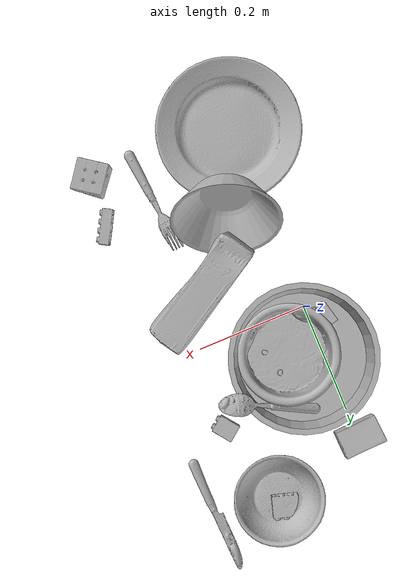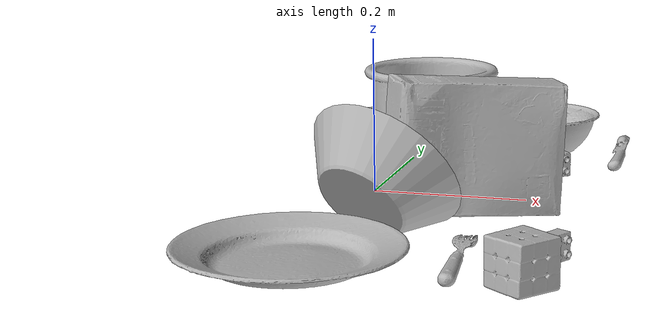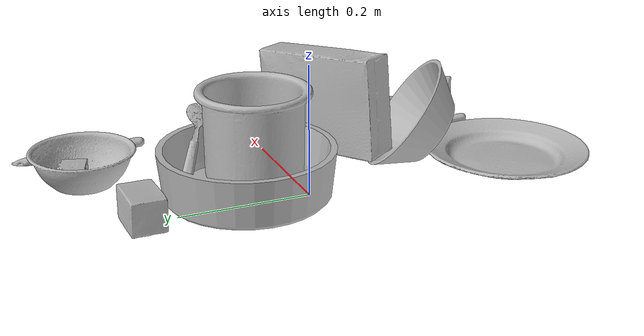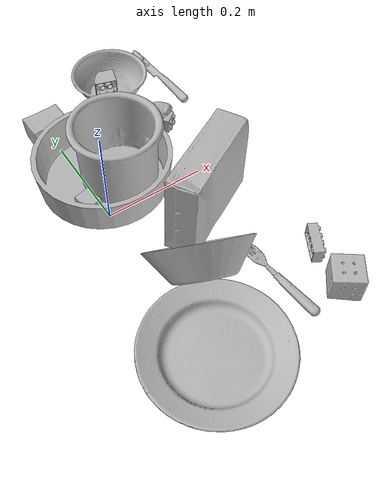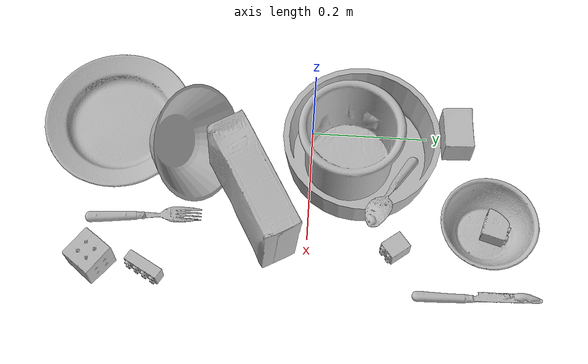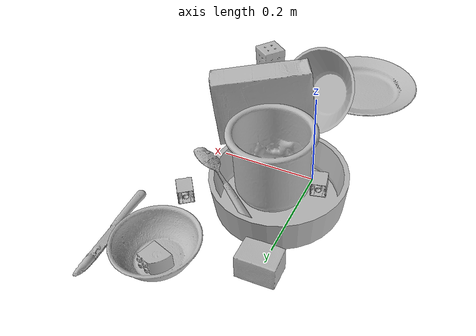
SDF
<sdf version="1.4">
  <world name="default">
    <light name="light1" type="point">
      <pose>0 0 1 0 0 0</pose>
      <diffuse>3 3 3 1</diffuse>
      <specular>3 3 3 1</specular>
    </light>
    <light name="light2" type="point">
      <pose>0 0.5 2 0 0 0</pose>
      <diffuse>1 1 1 1</diffuse>
      <specular>1 1 1 1</specular>
    </light>
    <light name="light3" type="point">
      <pose>0 0.5 2 0 0 0</pose>
      <diffuse>3 3 3 1</diffuse>
      <specular>3 3 3 1</specular>
    </light>
    <scene>
      <ambient>0.7 0.7 0.7</ambient>
    </scene>
    <model name="plate1">
      <link name="link_plate1">
        <collision name="default">
          <geometry>
            <mesh>
              <uri>model://plate/collision_meshes/collision.obj</uri>
              <scale>1.0 1.0 1.0</scale>
            </mesh>
          </geometry>
          <surface>
            <friction>
              <ode>
                <mu>0.5</mu>
                <mu2>0.5</mu2>
              </ode>
            </friction>
          <contact>
        <ode>
            <max_vel>0</max_vel>
            <min_depth>0.0001</min_depth>
            <kp>1e8</kp>
        </ode>
    </contact></surface>
        </collision>
        <visual name="default">
          <geometry>
            <mesh>
              <uri>model://plate/visual_meshes/visual.dae</uri>
              <scale>1.0 1.0 1.0</scale>
            </mesh>
          </geometry>
        </visual>
        <inertial>
          <mass>0.14927330613136292</mass>
          <pose>-0.0006044599576853216 0.00027825793949887156 -0.0010561984963715076 0.0022187657602494516 -0.0032254905015569333 0.45261542380491104</pose>
          <inertia>
            <ixx>0.0006983033</ixx>
            <iyy>0.0006916243</iyy>
            <izz>0.0013657772</izz>
            <ixy>0</ixy>
            <ixz>0</ixz>
            <iyz>0</iyz>
          </inertia>
        </inertial>
      </link>
      <pose>0.002247821306809783 -0.3411657214164734 0.013732998631894588 -3.3892048901661396e-08 2.9117569890897218e-08 1.7018580919705972</pose>
    </model>
    <model name="plate2">
      <link name="link_plate2">
        <collision name="default">
          <geometry>
            <mesh>
              <uri>model://pan_tefal/collision_meshes/collision.obj</uri>
              <scale>1.0 1.0 1.0</scale>
            </mesh>
          </geometry>
          <surface>
            <friction>
              <ode>
                <mu>0.5</mu>
                <mu2>0.5</mu2>
              </ode>
            </friction>
          <contact>
        <ode>
            <max_vel>0</max_vel>
            <min_depth>0.0001</min_depth>
            <kp>1e8</kp>
        </ode>
    </contact></surface>
        </collision>
        <visual name="default">
          <geometry>
            <mesh>
              <uri>model://pan_tefal/visual_meshes/visual.dae</uri>
              <scale>1.0 1.0 1.0</scale>
            </mesh>
          </geometry>
        </visual>
        <inertial>
          <mass>1.1722657680511475</mass>
          <pose>-0.00018002268916461617 3.2786720112198964e-05 -0.008514933288097382 0.0008190189984333748 -0.0003301390782503885 -0.3318520141268409</pose>
          <inertia>
            <ixx>0.008092094</ixx>
            <iyy>0.008144264</iyy>
            <izz>0.014895983</izz>
            <ixy>0</ixy>
            <ixz>0</ixz>
            <iyz>0</iyz>
          </inertia>
        </inertial>
      </link>
      <pose>0.03717725723981857 0.08269951492547989 0.03804996237158775 -8.32752676825464e-07 -6.860819170761176e-07 -0.4714575460271941</pose>
    </model>
    <model name="bowl1">
      <link name="link_bowl1">
        <collision name="default">
          <geometry>
            <mesh>
              <uri>model://bowl_a/collision_meshes/collision.obj</uri>
              <scale>1.0 1.0 1.0</scale>
            </mesh>
          </geometry>
          <surface>
            <friction>
              <ode>
                <mu>0.5</mu>
                <mu2>0.5</mu2>
              </ode>
            </friction>
          <contact>
        <ode>
            <max_vel>0</max_vel>
            <min_depth>0.0001</min_depth>
            <kp>1e8</kp>
        </ode>
    </contact></surface>
        </collision>
        <visual name="default">
          <geometry>
            <mesh>
              <uri>model://bowl_a/visual_meshes/visual.dae</uri>
              <scale>1.0 1.0 1.0</scale>
            </mesh>
          </geometry>
        </visual>
        <inertial>
          <mass>0.2988097667694092</mass>
          <pose>0.0002786743571050465 4.731365334009752e-05 -0.0013765293406322598 -0.0009805349169279892 -0.001093820822183951 -0.19123530183129564</pose>
          <inertia>
            <ixx>0.00085072505</ixx>
            <iyy>0.00085594796</iyy>
            <izz>0.0015130473</izz>
            <ixy>0</ixy>
            <ixz>0</ixz>
            <iyz>0</iyz>
          </inertia>
        </inertial>
      </link>
      <pose>0.06045495346188545 -0.21275465190410614 0.06440689414739609 0.7320157028315798 0.696698022677278 2.1508785067204306</pose>
    </model>
    <model name="bowl2">
      <link name="link_bowl2">
        <collision name="default">
          <geometry>
            <mesh>
              <uri>model://bowl/collision_meshes/collision.obj</uri>
              <scale>1.0 1.0 1.0</scale>
            </mesh>
          </geometry>
          <surface>
            <friction>
              <ode>
                <mu>0.5</mu>
                <mu2>0.5</mu2>
              </ode>
            </friction>
          <contact>
        <ode>
            <max_vel>0</max_vel>
            <min_depth>0.0001</min_depth>
            <kp>1e8</kp>
        </ode>
    </contact></surface>
        </collision>
        <visual name="default">
          <geometry>
            <mesh>
              <uri>model://bowl/visual_meshes/visual.dae</uri>
              <scale>1.0 1.0 1.0</scale>
            </mesh>
          </geometry>
        </visual>
        <inertial>
          <mass>0.05087859928607941</mass>
          <pose>0.00020445352129172534 -0.001030206447467208 -0.0008042655535973608 -0.015764084400621287 0.014546790156403148 0.7140405806030785</pose>
          <inertia>
            <ixx>0.0001168722</ixx>
            <iyy>0.00011426082</iyy>
            <izz>0.0001966192</izz>
            <ixy>0</ixy>
            <ixz>0</ixz>
            <iyz>0</iyz>
          </inertia>
        </inertial>
      </link>
      <pose>0.17188748717308044 0.2977326810359955 0.027779962867498398 2.7302517311737483e-06 4.888033083587851e-07 3.108995279996687</pose>
    </model>
    <model name="silverware1">
      <link name="link_silverware1">
        <collision name="default">
          <geometry>
            <mesh>
              <uri>model://spoon/collision_meshes/collision.obj</uri>
              <scale>1.0 1.0 1.0</scale>
            </mesh>
          </geometry>
          <surface>
            <friction>
              <ode>
                <mu>0.5</mu>
                <mu2>0.5</mu2>
              </ode>
            </friction>
          <contact>
        <ode>
            <max_vel>0</max_vel>
            <min_depth>0.0001</min_depth>
            <kp>1e8</kp>
        </ode>
    </contact></surface>
        </collision>
        <visual name="default">
          <geometry>
            <mesh>
              <uri>model://spoon/visual_meshes/visual.dae</uri>
              <scale>1.0 1.0 1.0</scale>
            </mesh>
          </geometry>
        </visual>
        <inertial>
          <mass>0.031133336946368217</mass>
          <pose>-0.005526311229914427 -0.001603417214937508 -0.000727165665011853 0.03521724372111935 -0.03906583963771688 0.006150613707428126</pose>
          <inertia>
            <ixx>1.7316867e-06</ixx>
            <iyy>0.00011846133</iyy>
            <izz>0.00011931534</izz>
            <ixy>0</ixy>
            <ixz>0</ixz>
            <iyz>0</iyz>
          </inertia>
        </inertial>
      </link>
      <pose>0.12143725156784058 0.13687019050121307 0.05670353025197983 -2.826508668914309 -0.4993118653593707 -0.4858401447070511</pose>
    </model>
    <model name="box1">
      <link name="link_box1">
        <collision name="default">
          <geometry>
            <mesh>
              <uri>model://cracker_box/collision_meshes/collision.obj</uri>
              <scale>1.0 1.0 1.0</scale>
            </mesh>
          </geometry>
          <surface>
            <friction>
              <ode>
                <mu>0.5</mu>
                <mu2>0.5</mu2>
              </ode>
            </friction>
          <contact>
        <ode>
            <max_vel>0</max_vel>
            <min_depth>0.0001</min_depth>
            <kp>1e8</kp>
        </ode>
    </contact></surface>
        </collision>
        <visual name="default">
          <geometry>
            <mesh>
              <uri>model://cracker_box/visual_meshes/visual.dae</uri>
              <scale>1.0 1.0 1.0</scale>
            </mesh>
          </geometry>
        </visual>
        <inertial>
          <mass>2.900710344314575</mass>
          <pose>0.0009464158210903406 0.00025434247800149024 -0.0017029534792527556 -0.0003162075379034469 -0.011106488669169442 0.0025467947685016775</pose>
          <inertia>
            <ixx>0.007378111</ixx>
            <iyy>0.012182713</iyy>
            <izz>0.01738585</izz>
            <ixy>0</ixy>
            <ixz>0</ixz>
            <iyz>0</iyz>
          </inertia>
        </inertial>
      </link>
      <pose>0.15424670279026031 -0.0938829556107521 0.08846589177846909 1.5469984598943518 0.0758205995783133 0.5360298253747439</pose>
    </model>
    <model name="box2">
      <link name="link_box2">
        <collision name="default">
          <geometry>
            <mesh>
              <uri>model://rubiks_cube/collision_meshes/collision.obj</uri>
              <scale>1.0 1.0 1.0</scale>
            </mesh>
          </geometry>
          <surface>
            <friction>
              <ode>
                <mu>0.5</mu>
                <mu2>0.5</mu2>
              </ode>
            </friction>
          <contact>
        <ode>
            <max_vel>0</max_vel>
            <min_depth>0.0001</min_depth>
            <kp>1e8</kp>
        </ode>
    </contact></surface>
        </collision>
        <visual name="default">
          <geometry>
            <mesh>
              <uri>model://rubiks_cube/visual_meshes/visual.dae</uri>
              <scale>1.0 1.0 1.0</scale>
            </mesh>
          </geometry>
        </visual>
        <inertial>
          <mass>0.28670012950897217</mass>
          <pose>2.6721039830590598e-05 5.2569666877388954e-05 -7.264316082000732e-06 -0.05467310906580907 -0.09814045067101686 -0.03445712671449578</pose>
          <inertia>
            <ixx>0.00015842107</ixx>
            <iyy>0.0001576823</iyy>
            <izz>0.00015973386</izz>
            <ixy>0</ixy>
            <ixz>0</ixz>
            <iyz>0</iyz>
          </inertia>
        </inertial>
      </link>
      <pose>0.26013025641441345 -0.35518428683280945 0.02867901511490345 -2.609251032553956e-08 -1.5954158578577448e-08 -0.6445591225602264</pose>
    </model>
    <model name="cup1">
      <link name="link_cup1">
        <collision name="default">
          <geometry>
            <mesh>
              <uri>model://g_cups/collision_meshes/collision.obj</uri>
              <scale>2.0 2.0 2.0</scale>
            </mesh>
          </geometry>
          <surface>
            <friction>
              <ode>
                <mu>0.5</mu>
                <mu2>0.5</mu2>
              </ode>
            </friction>
          <contact>
        <ode>
            <max_vel>0</max_vel>
            <min_depth>0.0001</min_depth>
            <kp>1e8</kp>
        </ode>
    </contact></surface>
        </collision>
        <visual name="default">
          <geometry>
            <mesh>
              <uri>model://g_cups/visual_meshes/visual.dae</uri>
              <scale>2.0 2.0 2.0</scale>
            </mesh>
          </geometry>
        </visual>
        <inertial>
          <mass>0.7979594469070435</mass>
          <pose>-0.001589252962730825 -8.413367322646081e-05 -0.004265873227268457 -0.2138242542550812 -0.3141046905663657 0.3112069095441374</pose>
          <inertia>
            <ixx>0.0037255902</ixx>
            <iyy>0.003712916</iyy>
            <izz>0.0038590694</izz>
            <ixy>0</ixy>
            <ixz>0</ixz>
            <iyz>0</iyz>
          </inertia>
        </inertial>
      </link>
      <pose>0.06035398319363594 0.06272336840629578 0.08205385506153107 -0.00014540862640737823 -0.004944069459770605 1.7132725620227764</pose>
    </model>
    <model name="silverware2">
      <link name="link_silverware2">
        <collision name="default">
          <geometry>
            <mesh>
              <uri>model://fork/collision_meshes/collision.obj</uri>
              <scale>1.0 1.0 1.0</scale>
            </mesh>
          </geometry>
          <surface>
            <friction>
              <ode>
                <mu>0.5</mu>
                <mu2>0.5</mu2>
              </ode>
            </friction>
          <contact>
        <ode>
            <max_vel>0</max_vel>
            <min_depth>0.0001</min_depth>
            <kp>1e8</kp>
        </ode>
    </contact></surface>
        </collision>
        <visual name="default">
          <geometry>
            <mesh>
              <uri>model://fork/visual_meshes/visual.dae</uri>
              <scale>1.0 1.0 1.0</scale>
            </mesh>
          </geometry>
        </visual>
        <inertial>
          <mass>0.026295984163880348</mass>
          <pose>-0.02957003563642502 0.0004658822435885668 0.0003218861238565296 -0.013551585765180826 -0.010977835012843383 0.014453895551669751</pose>
          <inertia>
            <ixx>9.2182285e-07</ixx>
            <iyy>6.865125e-05</iyy>
            <izz>6.9063564e-05</izz>
            <ixy>0</ixy>
            <ixz>0</ixz>
            <iyz>0</iyz>
          </inertia>
        </inertial>
      </link>
      <pose>0.17490287125110626 -0.2790652811527252 0.007446624804288149 -3.0634945870760966 0.002835868505061378 1.6654603377302633</pose>
    </model>
    <model name="silverware3">
      <link name="link_silverware3">
        <collision name="default">
          <geometry>
            <mesh>
              <uri>model://knife/collision_meshes/collision.obj</uri>
              <scale>1.0 1.0 1.0</scale>
            </mesh>
          </geometry>
          <surface>
            <friction>
              <ode>
                <mu>0.5</mu>
                <mu2>0.5</mu2>
              </ode>
            </friction>
          <contact>
        <ode>
            <max_vel>0</max_vel>
            <min_depth>0.0001</min_depth>
            <kp>1e8</kp>
        </ode>
    </contact></surface>
        </collision>
        <visual name="default">
          <geometry>
            <mesh>
              <uri>model://knife/visual_meshes/visual.dae</uri>
              <scale>1.0 1.0 1.0</scale>
            </mesh>
          </geometry>
        </visual>
        <inertial>
          <mass>0.018686598166823387</mass>
          <pose>-0.023785265162587166 0.001527512213215232 5.06201722600963e-05 0.0730586728597059 0.01724841756758314 -0.007409823953988089</pose>
          <inertia>
            <ixx>5.3040145e-07</ixx>
            <iyy>7.1790884e-05</iyy>
            <izz>7.1961695e-05</izz>
            <ixy>0</ixy>
            <ixz>0</ixz>
            <iyz>0</iyz>
          </inertia>
        </inertial>
      </link>
      <pose>0.28473979234695435 0.2829577326774597 0.005810767877846956 2.889376693416181 0.02591508190365929 1.608781816251187</pose>
    </model>
    <model name="toy1">
      <link name="link_toy1">
        <collision name="default">
          <geometry>
            <mesh>
              <uri>model://d_lego_duplo/collision_meshes/collision.obj</uri>
              <scale>1.0 1.0 1.0</scale>
            </mesh>
          </geometry>
          <surface>
            <friction>
              <ode>
                <mu>0.5</mu>
                <mu2>0.5</mu2>
              </ode>
            </friction>
          <contact>
        <ode>
            <max_vel>0</max_vel>
            <min_depth>0.0001</min_depth>
            <kp>1e8</kp>
        </ode>
    </contact></surface>
        </collision>
        <visual name="default">
          <geometry>
            <mesh>
              <uri>model://d_lego_duplo/visual_meshes/visual.dae</uri>
              <scale>1.0 1.0 1.0</scale>
            </mesh>
          </geometry>
        </visual>
        <inertial>
          <mass>0.057973701506853104</mass>
          <pose>0.002830564510077238 0.0001636612432776019 0.000858980929479003 0.08010949801199577 -0.38355255965562274 0.0010296774355632512</pose>
          <inertia>
            <ixx>1.1222855e-05</ixx>
            <iyy>1.5928275e-05</iyy>
            <izz>1.5360585e-05</izz>
            <ixy>0</ixy>
            <ixz>0</ixz>
            <iyz>0</iyz>
          </inertia>
        </inertial>
      </link>
      <pose>0.16678543388843536 0.31570667028427124 0.019414322450757027 -1.5675334560840573 -0.0038254976243344194 -0.29197379123948963</pose>
    </model>
    <model name="toy2">
      <link name="link_toy2">
        <collision name="default">
          <geometry>
            <mesh>
              <uri>model://c_lego_duplo/collision_meshes/collision.obj</uri>
              <scale>1.0 1.0 1.0</scale>
            </mesh>
          </geometry>
          <surface>
            <friction>
              <ode>
                <mu>0.5</mu>
                <mu2>0.5</mu2>
              </ode>
            </friction>
          <contact>
        <ode>
            <max_vel>0</max_vel>
            <min_depth>0.0001</min_depth>
            <kp>1e8</kp>
        </ode>
    </contact></surface>
        </collision>
        <visual name="default">
          <geometry>
            <mesh>
              <uri>model://c_lego_duplo/visual_meshes/visual.dae</uri>
              <scale>1.0 1.0 1.0</scale>
            </mesh>
          </geometry>
        </visual>
        <inertial>
          <mass>0.03295557200908661</mass>
          <pose>0.00031645927811041474 0.0001946454867720604 0.0010453149443492293 -0.011520797378012098 0.005900082234647494 0.03110035414112205</pose>
          <inertia>
            <ixx>1.2681916e-05</ixx>
            <iyy>4.0510618e-06</iyy>
            <izz>1.4820123e-05</izz>
            <ixy>0</ixy>
            <ixz>0</ixz>
            <iyz>0</iyz>
          </inertia>
        </inertial>
      </link>
      <pose>0.27153557538986206 -0.26663926243782043 0.016402918845415115 -1.417101508066244 1.5444105791738771 -1.9327655096623897</pose>
    </model>
    <model name="toy3">
      <link name="link_toy3">
        <collision name="default">
          <geometry>
            <mesh>
              <uri>model://foam_brick/collision_meshes/collision.obj</uri>
              <scale>1.0 1.0 1.0</scale>
            </mesh>
          </geometry>
          <surface>
            <friction>
              <ode>
                <mu>0.5</mu>
                <mu2>0.5</mu2>
              </ode>
            </friction>
          <contact>
        <ode>
            <max_vel>0</max_vel>
            <min_depth>0.0001</min_depth>
            <kp>1e8</kp>
        </ode>
    </contact></surface>
        </collision>
        <visual name="default">
          <geometry>
            <mesh>
              <uri>model://foam_brick/visual_meshes/visual.dae</uri>
              <scale>1.0 1.0 1.0</scale>
            </mesh>
          </geometry>
        </visual>
        <inertial>
          <mass>0.2026180773973465</mass>
          <pose>-0.00025224717683158815 0.0003458433202467859 -0.0002532101352699101 -0.2940154265809752 0.017274439844268085 -0.0007449877964386924</pose>
          <inertia>
            <ixx>8.850737e-05</ixx>
            <iyy>0.00014130655</iyy>
            <izz>0.00014310238</izz>
            <ixy>0</ixy>
            <ixz>0</ixz>
            <iyz>0</iyz>
          </inertia>
        </inertial>
      </link>
      <pose>-0.0026904980186372995 0.25023153424263 0.025496836751699448 3.1325083698246847 0.006607272671677433 -3.098797808229579</pose>
    </model>
    <model name="toy4">
      <link name="link_toy4">
        <collision name="default">
          <geometry>
            <mesh>
              <uri>model://f_lego_duplo/collision_meshes/collision.obj</uri>
              <scale>1.0 1.0 1.0</scale>
            </mesh>
          </geometry>
          <surface>
            <friction>
              <ode>
                <mu>0.5</mu>
                <mu2>0.5</mu2>
              </ode>
            </friction>
          <contact>
        <ode>
            <max_vel>0</max_vel>
            <min_depth>0.0001</min_depth>
            <kp>1e8</kp>
        </ode>
    </contact></surface>
        </collision>
        <visual name="default">
          <geometry>
            <mesh>
              <uri>model://f_lego_duplo/visual_meshes/visual.dae</uri>
              <scale>1.0 1.0 1.0</scale>
            </mesh>
          </geometry>
        </visual>
        <inertial>
          <mass>0.026114314794540405</mass>
          <pose>2.3694528863416053e-05 0.00013393153494689614 0.001883787801489234 0.02983849389432246 -0.014425286210530337 -0.675657453158783</pose>
          <inertia>
            <ixx>5.5180976e-06</ixx>
            <iyy>5.5672576e-06</iyy>
            <izz>4.7899434e-06</izz>
            <ixy>0</ixy>
            <ixz>0</ixz>
            <iyz>0</iyz>
          </inertia>
        </inertial>
      </link>
      <pose>-0.024997206404805183 0.027757637202739716 0.023745886981487274 1.580704127700584 -0.002652943352616732 0.24041547001190808</pose>
    </model>
    <model name="toy5">
      <link name="link_toy5">
        <collision name="default">
          <geometry>
            <mesh>
              <uri>model://b_lego_duplo/collision_meshes/collision.obj</uri>
              <scale>1.0 1.0 1.0</scale>
            </mesh>
          </geometry>
          <surface>
            <friction>
              <ode>
                <mu>0.5</mu>
                <mu2>0.5</mu2>
              </ode>
            </friction>
          <contact>
        <ode>
            <max_vel>0</max_vel>
            <min_depth>0.0001</min_depth>
            <kp>1e8</kp>
        </ode>
    </contact></surface>
        </collision>
        <visual name="default">
          <geometry>
            <mesh>
              <uri>model://b_lego_duplo/visual_meshes/visual.dae</uri>
              <scale>1.0 1.0 1.0</scale>
            </mesh>
          </geometry>
        </visual>
        <inertial>
          <mass>0.0471348837018013</mass>
          <pose>-0.00011053068010369316 -9.152583515970036e-06 0.0019294292433187366 -0.037494549971735465 -0.026354388193955382 0.45188781154390406</pose>
          <inertia>
            <ixx>9.646508e-06</ixx>
            <iyy>9.711356e-06</iyy>
            <izz>8.594722e-06</izz>
            <ixy>0</ixy>
            <ixz>0</ixz>
            <iyz>0</iyz>
          </inertia>
        </inertial>
      </link>
      <pose>0.2124597281217575 0.1453455239534378 0.016121307387948036 1.5723778351139481 -0.012012866400096698 0.6558858861054963</pose>
    </model>
  <physics type="ode">
      <max_contacts>50</max_contacts>
      <ode>
        <solver>
          <type>quick</type>
          <iters>75</iters>
        </solver>
        <constraints>
          <contact_max_correcting_vel>0</contact_max_correcting_vel>
          <contact_surface_layer>0</contact_surface_layer>
        </constraints>
      </ode>
    </physics></world>
</sdf>
